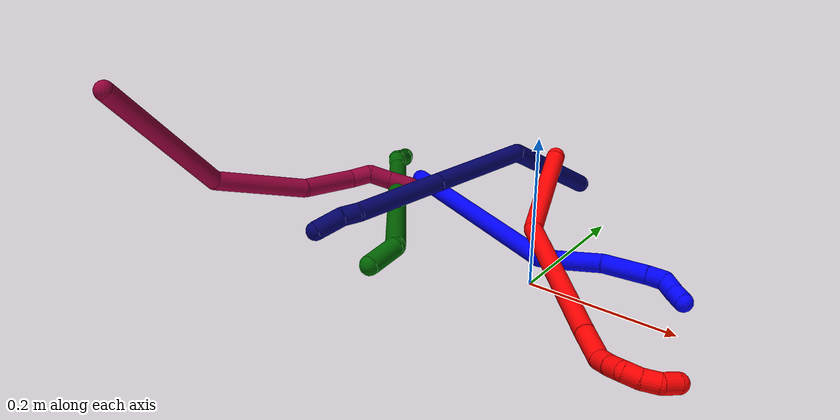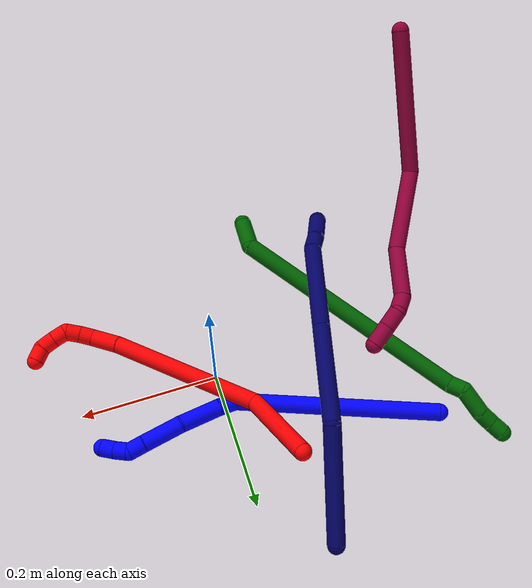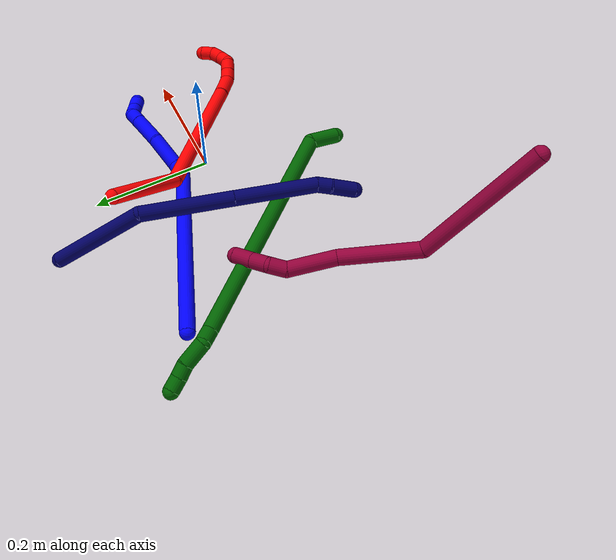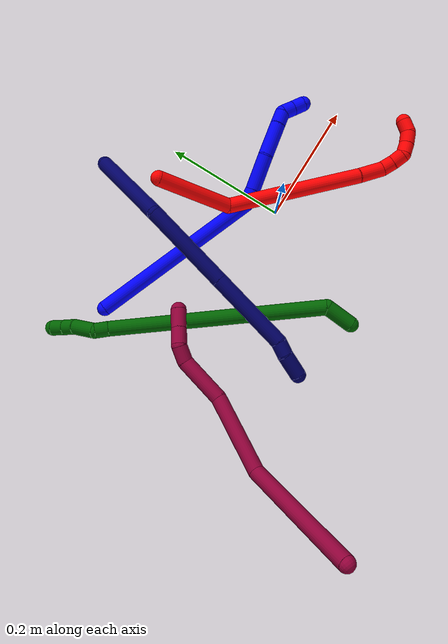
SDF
<sdf version="1.7">
 <world name="default">
  <model name="1">
   <static>0</static>
   <link name="1">
    <collision name="collision-cylinder-e_1_1_4">
     <pose>0.132333 -0.04113 0.045461 0.735427 1.13696 0.482608</pose>
     <geometry><cylinder><radius>0.0125</radius><length>0.291688</length></cylinder></geometry>
     <surface>
      <friction><ode><mu>1.16</mu><mu2>1.16</mu2><slip1>0</slip1><slip2>0</slip2></ode></friction>
      <contact><ode><kp>1e+06</kp><kd>1</kd><max_vel>0</max_vel><min_depth>0.001</min_depth></ode></contact>
     </surface>
    </collision>
    <visual name="visual-cylinder-e_1_1_4">
     <pose>0.132333 -0.04113 0.045461 0.735427 1.13696 0.482608</pose>
     <geometry><cylinder><radius>0.0125</radius><length>0.291688</length></cylinder></geometry>
     <material><ambient>0 0 1 1</ambient></material>
    </visual>
    <collision name="collision-cylinder-e_2_4_5">
     <pose>0.276727 -0.079462 0.095332 -0.565523 1.1621 -0.377055</pose>
     <geometry><cylinder><radius>0.0125</radius><length>0.026285</length></cylinder></geometry>
     <surface>
      <friction><ode><mu>1.16</mu><mu2>1.16</mu2><slip1>0</slip1><slip2>0</slip2></ode></friction>
      <contact><ode><kp>1e+06</kp><kd>1</kd><max_vel>0</max_vel><min_depth>0.001</min_depth></ode></contact>
     </surface>
    </collision>
    <visual name="visual-cylinder-e_2_4_5">
     <pose>0.276727 -0.079462 0.095332 -0.565523 1.1621 -0.377055</pose>
     <geometry><cylinder><radius>0.0125</radius><length>0.026285</length></cylinder></geometry>
     <material><ambient>0 0 1 1</ambient></material>
    </visual>
    <collision name="collision-cylinder-e_3_5_6">
     <pose>0.315846 -0.067683 0.109793 -0.729129 1.10867 -0.464004</pose>
     <geometry><cylinder><radius>0.0125</radius><length>0.06046</length></cylinder></geometry>
     <surface>
      <friction><ode><mu>1.16</mu><mu2>1.16</mu2><slip1>0</slip1><slip2>0</slip2></ode></friction>
      <contact><ode><kp>1e+06</kp><kd>1</kd><max_vel>0</max_vel><min_depth>0.001</min_depth></ode></contact>
     </surface>
    </collision>
    <visual name="visual-cylinder-e_3_5_6">
     <pose>0.315846 -0.067683 0.109793 -0.729129 1.10867 -0.464004</pose>
     <geometry><cylinder><radius>0.0125</radius><length>0.06046</length></cylinder></geometry>
     <material><ambient>0 0 1 1</ambient></material>
    </visual>
    <collision name="collision-cylinder-e_4_6_7">
     <pose>0.370415 -0.05164 0.12415 -1.02344 1.27869 -0.791135</pose>
     <geometry><cylinder><radius>0.0125</radius><length>0.057454</length></cylinder></geometry>
     <surface>
      <friction><ode><mu>1.16</mu><mu2>1.16</mu2><slip1>0</slip1><slip2>0</slip2></ode></friction>
      <contact><ode><kp>1e+06</kp><kd>1</kd><max_vel>0</max_vel><min_depth>0.001</min_depth></ode></contact>
     </surface>
    </collision>
    <visual name="visual-cylinder-e_4_6_7">
     <pose>0.370415 -0.05164 0.12415 -1.02344 1.27869 -0.791135</pose>
     <geometry><cylinder><radius>0.0125</radius><length>0.057454</length></cylinder></geometry>
     <material><ambient>0 0 1 1</ambient></material>
    </visual>
    <collision name="collision-cylinder-e_5_7_8">
     <pose>0.40903 -0.041984 0.129482 -1.19343 1.32481 -0.974489</pose>
     <geometry><cylinder><radius>0.0125</radius><length>0.0229</length></cylinder></geometry>
     <surface>
      <friction><ode><mu>1.16</mu><mu2>1.16</mu2><slip1>0</slip1><slip2>0</slip2></ode></friction>
      <contact><ode><kp>1e+06</kp><kd>1</kd><max_vel>0</max_vel><min_depth>0.001</min_depth></ode></contact>
     </surface>
    </collision>
    <visual name="visual-cylinder-e_5_7_8">
     <pose>0.40903 -0.041984 0.129482 -1.19343 1.32481 -0.974489</pose>
     <geometry><cylinder><radius>0.0125</radius><length>0.0229</length></cylinder></geometry>
     <material><ambient>0 0 1 1</ambient></material>
    </visual>
    <collision name="collision-cylinder-e_6_8_9">
     <pose>0.429342 -0.044281 0.131129 1.44479 1.07937 0.971445</pose>
     <geometry><cylinder><radius>0.0125</radius><length>0.020885</length></cylinder></geometry>
     <surface>
      <friction><ode><mu>1.16</mu><mu2>1.16</mu2><slip1>0</slip1><slip2>0</slip2></ode></friction>
      <contact><ode><kp>1e+06</kp><kd>1</kd><max_vel>0</max_vel><min_depth>0.001</min_depth></ode></contact>
     </surface>
    </collision>
    <visual name="visual-cylinder-e_6_8_9">
     <pose>0.429342 -0.044281 0.131129 1.44479 1.07937 0.971445</pose>
     <geometry><cylinder><radius>0.0125</radius><length>0.020885</length></cylinder></geometry>
     <material><ambient>0 0 1 1</ambient></material>
    </visual>
    <collision name="collision-cylinder-e_7_9_2">
     <pose>0.447292 -0.053954 0.133741 1.1761 1.03568 0.72601</pose>
     <geometry><cylinder><radius>0.0125</radius><length>0.020329</length></cylinder></geometry>
     <surface>
      <friction><ode><mu>1.16</mu><mu2>1.16</mu2><slip1>0</slip1><slip2>0</slip2></ode></friction>
      <contact><ode><kp>1e+06</kp><kd>1</kd><max_vel>0</max_vel><min_depth>0.001</min_depth></ode></contact>
     </surface>
    </collision>
    <visual name="visual-cylinder-e_7_9_2">
     <pose>0.447292 -0.053954 0.133741 1.1761 1.03568 0.72601</pose>
     <geometry><cylinder><radius>0.0125</radius><length>0.020329</length></cylinder></geometry>
     <material><ambient>0 0 1 1</ambient></material>
    </visual>
    <collision name="collision-sphere-2">
     <pose>0.456035 -0.058739 0.135734 0 -0 0</pose>
     <geometry><sphere><radius>0.0125</radius></sphere></geometry>
     <surface>
      <friction><ode><mu>1.16</mu><mu2>1.16</mu2><slip1>0</slip1><slip2>0</slip2></ode></friction>
      <contact><ode><kp>1e+06</kp><kd>1</kd><max_vel>0</max_vel><min_depth>0.001</min_depth></ode></contact>
     </surface>
    </collision>
    <visual name="visual-sphere-2">
     <pose>0.456035 -0.058739 0.135734 0 -0 0</pose>
     <geometry><sphere><radius>0.0125</radius></sphere></geometry>
     <material><ambient>0 0 1 1</ambient></material>
    </visual>
    <collision name="collision-sphere-9">
     <pose>0.438548 -0.049169 0.131748 0 -0 0</pose>
     <geometry><sphere><radius>0.0125</radius></sphere></geometry>
     <surface>
      <friction><ode><mu>1.16</mu><mu2>1.16</mu2><slip1>0</slip1><slip2>0</slip2></ode></friction>
      <contact><ode><kp>1e+06</kp><kd>1</kd><max_vel>0</max_vel><min_depth>0.001</min_depth></ode></contact>
     </surface>
    </collision>
    <visual name="visual-sphere-9">
     <pose>0.438548 -0.049169 0.131748 0 -0 0</pose>
     <geometry><sphere><radius>0.0125</radius></sphere></geometry>
     <material><ambient>0 0 1 1</ambient></material>
    </visual>
    <collision name="collision-sphere-4">
     <pose>0.264667 -0.08226 0.090922 0 -0 0</pose>
     <geometry><sphere><radius>0.0125</radius></sphere></geometry>
     <surface>
      <friction><ode><mu>1.16</mu><mu2>1.16</mu2><slip1>0</slip1><slip2>0</slip2></ode></friction>
      <contact><ode><kp>1e+06</kp><kd>1</kd><max_vel>0</max_vel><min_depth>0.001</min_depth></ode></contact>
     </surface>
    </collision>
    <visual name="visual-sphere-4">
     <pose>0.264667 -0.08226 0.090922 0 -0 0</pose>
     <geometry><sphere><radius>0.0125</radius></sphere></geometry>
     <material><ambient>0 0 1 1</ambient></material>
    </visual>
    <collision name="collision-sphere-1">
     <geometry><sphere><radius>0.0125</radius></sphere></geometry>
     <surface>
      <friction><ode><mu>1.16</mu><mu2>1.16</mu2><slip1>0</slip1><slip2>0</slip2></ode></friction>
      <contact><ode><kp>1e+06</kp><kd>1</kd><max_vel>0</max_vel><min_depth>0.001</min_depth></ode></contact>
     </surface>
    </collision>
    <visual name="visual-sphere-1">
     <geometry><sphere><radius>0.0125</radius></sphere></geometry>
     <material><ambient>0 0 1 1</ambient></material>
    </visual>
    <collision name="collision-sphere-8">
     <pose>0.420135 -0.039392 0.13051 0 -0 0</pose>
     <geometry><sphere><radius>0.0125</radius></sphere></geometry>
     <surface>
      <friction><ode><mu>1.16</mu><mu2>1.16</mu2><slip1>0</slip1><slip2>0</slip2></ode></friction>
      <contact><ode><kp>1e+06</kp><kd>1</kd><max_vel>0</max_vel><min_depth>0.001</min_depth></ode></contact>
     </surface>
    </collision>
    <visual name="visual-sphere-8">
     <pose>0.420135 -0.039392 0.13051 0 -0 0</pose>
     <geometry><sphere><radius>0.0125</radius></sphere></geometry>
     <material><ambient>0 0 1 1</ambient></material>
    </visual>
    <collision name="collision-sphere-5">
     <pose>0.288787 -0.076663 0.099741 0 -0 0</pose>
     <geometry><sphere><radius>0.0125</radius></sphere></geometry>
     <surface>
      <friction><ode><mu>1.16</mu><mu2>1.16</mu2><slip1>0</slip1><slip2>0</slip2></ode></friction>
      <contact><ode><kp>1e+06</kp><kd>1</kd><max_vel>0</max_vel><min_depth>0.001</min_depth></ode></contact>
     </surface>
    </collision>
    <visual name="visual-sphere-5">
     <pose>0.288787 -0.076663 0.099741 0 -0 0</pose>
     <geometry><sphere><radius>0.0125</radius></sphere></geometry>
     <material><ambient>0 0 1 1</ambient></material>
    </visual>
    <collision name="collision-sphere-6">
     <pose>0.342905 -0.058704 0.119844 0 -0 0</pose>
     <geometry><sphere><radius>0.0125</radius></sphere></geometry>
     <surface>
      <friction><ode><mu>1.16</mu><mu2>1.16</mu2><slip1>0</slip1><slip2>0</slip2></ode></friction>
      <contact><ode><kp>1e+06</kp><kd>1</kd><max_vel>0</max_vel><min_depth>0.001</min_depth></ode></contact>
     </surface>
    </collision>
    <visual name="visual-sphere-6">
     <pose>0.342905 -0.058704 0.119844 0 -0 0</pose>
     <geometry><sphere><radius>0.0125</radius></sphere></geometry>
     <material><ambient>0 0 1 1</ambient></material>
    </visual>
    <collision name="collision-sphere-7">
     <pose>0.397925 -0.044576 0.128455 0 -0 0</pose>
     <geometry><sphere><radius>0.0125</radius></sphere></geometry>
     <surface>
      <friction><ode><mu>1.16</mu><mu2>1.16</mu2><slip1>0</slip1><slip2>0</slip2></ode></friction>
      <contact><ode><kp>1e+06</kp><kd>1</kd><max_vel>0</max_vel><min_depth>0.001</min_depth></ode></contact>
     </surface>
    </collision>
    <visual name="visual-sphere-7">
     <pose>0.397925 -0.044576 0.128455 0 -0 0</pose>
     <geometry><sphere><radius>0.0125</radius></sphere></geometry>
     <material><ambient>0 0 1 1</ambient></material>
    </visual>
    <inertial>
     <pose>0.227356 -0.048256 0.075919 0 -0 0</pose>
     <mass>0.5</mass>
     <inertia>
      <ixx>0.001222</ixx>
      <ixy>0</ixy>
      <ixz>0</ixz>
      <iyy>0.00239</iyy>
      <iyz>0</iyz>
      <izz>-0.001343</izz>
     </inertia>
    </inertial>
   </link>
   <pose>-0.287516 0.154759 0.012457 0.255414 0.252138 -0.012266</pose>
  </model>
  <model name="2">
   <static>0</static>
   <link name="2">
    <collision name="collision-cylinder-e_1_1_4">
     <pose>-0.00595 0.000196 -0.063327 -3.13849 -0.093684 3.07544</pose>
     <geometry><cylinder><radius>0.0125</radius><length>0.127213</length></cylinder></geometry>
     <surface>
      <friction><ode><mu>1.16</mu><mu2>1.16</mu2><slip1>0</slip1><slip2>0</slip2></ode></friction>
      <contact><ode><kp>1e+06</kp><kd>1</kd><max_vel>0</max_vel><min_depth>0.001</min_depth></ode></contact>
     </surface>
    </collision>
    <visual name="visual-cylinder-e_1_1_4">
     <pose>-0.00595 0.000196 -0.063327 -3.13849 -0.093684 3.07544</pose>
     <geometry><cylinder><radius>0.0125</radius><length>0.127213</length></cylinder></geometry>
     <material><ambient>1 0 0 1</ambient></material>
    </visual>
    <collision name="collision-cylinder-e_2_4_5">
     <pose>0.025807 -0.048169 -0.221042 2.66642 0.341334 1.23706</pose>
     <geometry><cylinder><radius>0.0125</radius><length>0.225292</length></cylinder></geometry>
     <surface>
      <friction><ode><mu>1.16</mu><mu2>1.16</mu2><slip1>0</slip1><slip2>0</slip2></ode></friction>
      <contact><ode><kp>1e+06</kp><kd>1</kd><max_vel>0</max_vel><min_depth>0.001</min_depth></ode></contact>
     </surface>
    </collision>
    <visual name="visual-cylinder-e_2_4_5">
     <pose>0.025807 -0.048169 -0.221042 2.66642 0.341334 1.23706</pose>
     <geometry><cylinder><radius>0.0125</radius><length>0.225292</length></cylinder></geometry>
     <material><ambient>1 0 0 1</ambient></material>
    </visual>
    <collision name="collision-cylinder-e_3_5_6">
     <pose>0.072527 -0.103909 -0.333699 2.76717 0.430408 1.71348</pose>
     <geometry><cylinder><radius>0.0125</radius><length>0.043199</length></cylinder></geometry>
     <surface>
      <friction><ode><mu>1.16</mu><mu2>1.16</mu2><slip1>0</slip1><slip2>0</slip2></ode></friction>
      <contact><ode><kp>1e+06</kp><kd>1</kd><max_vel>0</max_vel><min_depth>0.001</min_depth></ode></contact>
     </surface>
    </collision>
    <visual name="visual-cylinder-e_3_5_6">
     <pose>0.072527 -0.103909 -0.333699 2.76717 0.430408 1.71348</pose>
     <geometry><cylinder><radius>0.0125</radius><length>0.043199</length></cylinder></geometry>
     <material><ambient>1 0 0 1</ambient></material>
    </visual>
    <collision name="collision-cylinder-e_4_6_7">
     <pose>0.086894 -0.117677 -0.357784 2.29394 0.547225 1.11296</pose>
     <geometry><cylinder><radius>0.0125</radius><length>0.020582</length></cylinder></geometry>
     <surface>
      <friction><ode><mu>1.16</mu><mu2>1.16</mu2><slip1>0</slip1><slip2>0</slip2></ode></friction>
      <contact><ode><kp>1e+06</kp><kd>1</kd><max_vel>0</max_vel><min_depth>0.001</min_depth></ode></contact>
     </surface>
    </collision>
    <visual name="visual-cylinder-e_4_6_7">
     <pose>0.086894 -0.117677 -0.357784 2.29394 0.547225 1.11296</pose>
     <geometry><cylinder><radius>0.0125</radius><length>0.020582</length></cylinder></geometry>
     <material><ambient>1 0 0 1</ambient></material>
    </visual>
    <collision name="collision-cylinder-e_5_7_8">
     <pose>0.098331 -0.130899 -0.368565 2.2134 0.633188 1.15905</pose>
     <geometry><cylinder><radius>0.0125</radius><length>0.020558</length></cylinder></geometry>
     <surface>
      <friction><ode><mu>1.16</mu><mu2>1.16</mu2><slip1>0</slip1><slip2>0</slip2></ode></friction>
      <contact><ode><kp>1e+06</kp><kd>1</kd><max_vel>0</max_vel><min_depth>0.001</min_depth></ode></contact>
     </surface>
    </collision>
    <visual name="visual-cylinder-e_5_7_8">
     <pose>0.098331 -0.130899 -0.368565 2.2134 0.633188 1.15905</pose>
     <geometry><cylinder><radius>0.0125</radius><length>0.020558</length></cylinder></geometry>
     <material><ambient>1 0 0 1</ambient></material>
    </visual>
    <collision name="collision-cylinder-e_6_8_9">
     <pose>0.114282 -0.138137 -0.376029 2.90436 1.31599 2.83562</pose>
     <geometry><cylinder><radius>0.0125</radius><length>0.020396</length></cylinder></geometry>
     <surface>
      <friction><ode><mu>1.16</mu><mu2>1.16</mu2><slip1>0</slip1><slip2>0</slip2></ode></friction>
      <contact><ode><kp>1e+06</kp><kd>1</kd><max_vel>0</max_vel><min_depth>0.001</min_depth></ode></contact>
     </surface>
    </collision>
    <visual name="visual-cylinder-e_6_8_9">
     <pose>0.114282 -0.138137 -0.376029 2.90436 1.31599 2.83562</pose>
     <geometry><cylinder><radius>0.0125</radius><length>0.020396</length></cylinder></geometry>
     <material><ambient>1 0 0 1</ambient></material>
    </visual>
    <collision name="collision-cylinder-e_7_9_10">
     <pose>0.134819 -0.13979 -0.37915 2.10654 1.45699 2.00573</pose>
     <geometry><cylinder><radius>0.0125</radius><length>0.021475</length></cylinder></geometry>
     <surface>
      <friction><ode><mu>1.16</mu><mu2>1.16</mu2><slip1>0</slip1><slip2>0</slip2></ode></friction>
      <contact><ode><kp>1e+06</kp><kd>1</kd><max_vel>0</max_vel><min_depth>0.001</min_depth></ode></contact>
     </surface>
    </collision>
    <visual name="visual-cylinder-e_7_9_10">
     <pose>0.134819 -0.13979 -0.37915 2.10654 1.45699 2.00573</pose>
     <geometry><cylinder><radius>0.0125</radius><length>0.021475</length></cylinder></geometry>
     <material><ambient>1 0 0 1</ambient></material>
    </visual>
    <collision name="collision-cylinder-e_8_10_2">
     <pose>0.155258 -0.138746 -0.37611 -0.518925 1.16331 -0.345598</pose>
     <geometry><cylinder><radius>0.0125</radius><length>0.021286</length></cylinder></geometry>
     <surface>
      <friction><ode><mu>1.16</mu><mu2>1.16</mu2><slip1>0</slip1><slip2>0</slip2></ode></friction>
      <contact><ode><kp>1e+06</kp><kd>1</kd><max_vel>0</max_vel><min_depth>0.001</min_depth></ode></contact>
     </surface>
    </collision>
    <visual name="visual-cylinder-e_8_10_2">
     <pose>0.155258 -0.138746 -0.37611 -0.518925 1.16331 -0.345598</pose>
     <geometry><cylinder><radius>0.0125</radius><length>0.021286</length></cylinder></geometry>
     <material><ambient>1 0 0 1</ambient></material>
    </visual>
    <collision name="collision-sphere-2">
     <pose>0.16503 -0.136655 -0.372448 0 -0 0</pose>
     <geometry><sphere><radius>0.0125</radius></sphere></geometry>
     <surface>
      <friction><ode><mu>1.16</mu><mu2>1.16</mu2><slip1>0</slip1><slip2>0</slip2></ode></friction>
      <contact><ode><kp>1e+06</kp><kd>1</kd><max_vel>0</max_vel><min_depth>0.001</min_depth></ode></contact>
     </surface>
    </collision>
    <visual name="visual-sphere-2">
     <pose>0.16503 -0.136655 -0.372448 0 -0 0</pose>
     <geometry><sphere><radius>0.0125</radius></sphere></geometry>
     <material><ambient>1 0 0 1</ambient></material>
    </visual>
    <collision name="collision-sphere-10">
     <pose>0.145487 -0.140838 -0.379773 0 -0 0</pose>
     <geometry><sphere><radius>0.0125</radius></sphere></geometry>
     <surface>
      <friction><ode><mu>1.16</mu><mu2>1.16</mu2><slip1>0</slip1><slip2>0</slip2></ode></friction>
      <contact><ode><kp>1e+06</kp><kd>1</kd><max_vel>0</max_vel><min_depth>0.001</min_depth></ode></contact>
     </surface>
    </collision>
    <visual name="visual-sphere-10">
     <pose>0.145487 -0.140838 -0.379773 0 -0 0</pose>
     <geometry><sphere><radius>0.0125</radius></sphere></geometry>
     <material><ambient>1 0 0 1</ambient></material>
    </visual>
    <collision name="collision-sphere-9">
     <pose>0.12415 -0.138741 -0.378528 0 -0 0</pose>
     <geometry><sphere><radius>0.0125</radius></sphere></geometry>
     <surface>
      <friction><ode><mu>1.16</mu><mu2>1.16</mu2><slip1>0</slip1><slip2>0</slip2></ode></friction>
      <contact><ode><kp>1e+06</kp><kd>1</kd><max_vel>0</max_vel><min_depth>0.001</min_depth></ode></contact>
     </surface>
    </collision>
    <visual name="visual-sphere-9">
     <pose>0.12415 -0.138741 -0.378528 0 -0 0</pose>
     <geometry><sphere><radius>0.0125</radius></sphere></geometry>
     <material><ambient>1 0 0 1</ambient></material>
    </visual>
    <collision name="collision-sphere-4">
     <pose>-0.0119 0.000393 -0.126654 0 -0 0</pose>
     <geometry><sphere><radius>0.0125</radius></sphere></geometry>
     <surface>
      <friction><ode><mu>1.16</mu><mu2>1.16</mu2><slip1>0</slip1><slip2>0</slip2></ode></friction>
      <contact><ode><kp>1e+06</kp><kd>1</kd><max_vel>0</max_vel><min_depth>0.001</min_depth></ode></contact>
     </surface>
    </collision>
    <visual name="visual-sphere-4">
     <pose>-0.0119 0.000393 -0.126654 0 -0 0</pose>
     <geometry><sphere><radius>0.0125</radius></sphere></geometry>
     <material><ambient>1 0 0 1</ambient></material>
    </visual>
    <collision name="collision-sphere-1">
     <geometry><sphere><radius>0.0125</radius></sphere></geometry>
     <surface>
      <friction><ode><mu>1.16</mu><mu2>1.16</mu2><slip1>0</slip1><slip2>0</slip2></ode></friction>
      <contact><ode><kp>1e+06</kp><kd>1</kd><max_vel>0</max_vel><min_depth>0.001</min_depth></ode></contact>
     </surface>
    </collision>
    <visual name="visual-sphere-1">
     <geometry><sphere><radius>0.0125</radius></sphere></geometry>
     <material><ambient>1 0 0 1</ambient></material>
    </visual>
    <collision name="collision-sphere-8">
     <pose>0.104413 -0.137533 -0.373531 0 -0 0</pose>
     <geometry><sphere><radius>0.0125</radius></sphere></geometry>
     <surface>
      <friction><ode><mu>1.16</mu><mu2>1.16</mu2><slip1>0</slip1><slip2>0</slip2></ode></friction>
      <contact><ode><kp>1e+06</kp><kd>1</kd><max_vel>0</max_vel><min_depth>0.001</min_depth></ode></contact>
     </surface>
    </collision>
    <visual name="visual-sphere-8">
     <pose>0.104413 -0.137533 -0.373531 0 -0 0</pose>
     <geometry><sphere><radius>0.0125</radius></sphere></geometry>
     <material><ambient>1 0 0 1</ambient></material>
    </visual>
    <collision name="collision-sphere-5">
     <pose>0.063515 -0.09673 -0.315429 0 -0 0</pose>
     <geometry><sphere><radius>0.0125</radius></sphere></geometry>
     <surface>
      <friction><ode><mu>1.16</mu><mu2>1.16</mu2><slip1>0</slip1><slip2>0</slip2></ode></friction>
      <contact><ode><kp>1e+06</kp><kd>1</kd><max_vel>0</max_vel><min_depth>0.001</min_depth></ode></contact>
     </surface>
    </collision>
    <visual name="visual-sphere-5">
     <pose>0.063515 -0.09673 -0.315429 0 -0 0</pose>
     <geometry><sphere><radius>0.0125</radius></sphere></geometry>
     <material><ambient>1 0 0 1</ambient></material>
    </visual>
    <collision name="collision-sphere-6">
     <pose>0.081539 -0.111089 -0.351968 0 -0 0</pose>
     <geometry><sphere><radius>0.0125</radius></sphere></geometry>
     <surface>
      <friction><ode><mu>1.16</mu><mu2>1.16</mu2><slip1>0</slip1><slip2>0</slip2></ode></friction>
      <contact><ode><kp>1e+06</kp><kd>1</kd><max_vel>0</max_vel><min_depth>0.001</min_depth></ode></contact>
     </surface>
    </collision>
    <visual name="visual-sphere-6">
     <pose>0.081539 -0.111089 -0.351968 0 -0 0</pose>
     <geometry><sphere><radius>0.0125</radius></sphere></geometry>
     <material><ambient>1 0 0 1</ambient></material>
    </visual>
    <collision name="collision-sphere-7">
     <pose>0.092248 -0.124266 -0.363599 0 -0 0</pose>
     <geometry><sphere><radius>0.0125</radius></sphere></geometry>
     <surface>
      <friction><ode><mu>1.16</mu><mu2>1.16</mu2><slip1>0</slip1><slip2>0</slip2></ode></friction>
      <contact><ode><kp>1e+06</kp><kd>1</kd><max_vel>0</max_vel><min_depth>0.001</min_depth></ode></contact>
     </surface>
    </collision>
    <visual name="visual-sphere-7">
     <pose>0.092248 -0.124266 -0.363599 0 -0 0</pose>
     <geometry><sphere><radius>0.0125</radius></sphere></geometry>
     <material><ambient>1 0 0 1</ambient></material>
    </visual>
    <inertial>
     <pose>0.041062 -0.058403 -0.222057 0 -0 0</pose>
     <mass>0.5</mass>
     <inertia><ixx>0.001012</ixx><ixy>0</ixy><ixz>0</ixz><iyy>0.00091</iyy><iyz>0</iyz><izz>7.4e-05</izz></inertia>
    </inertial>
   </link>
   <pose>-0.069962 0.176857 0.098161 -1.06136 0.148963 0.472061</pose>
  </model>
  <model name="6">
   <static>0</static>
   <link name="6">
    <collision name="collision-cylinder-e_1_1_4">
     <pose>0.004273 0.003531 -0.02227 -2.98435 0.187301 -1.74568</pose>
     <geometry><cylinder><radius>0.0125</radius><length>0.045898</length></cylinder></geometry>
     <surface>
      <friction><ode><mu>1.16</mu><mu2>1.16</mu2><slip1>0</slip1><slip2>0</slip2></ode></friction>
      <contact><ode><kp>1e+06</kp><kd>1</kd><max_vel>0</max_vel><min_depth>0.001</min_depth></ode></contact>
     </surface>
    </collision>
    <visual name="visual-cylinder-e_1_1_4">
     <pose>0.004273 0.003531 -0.02227 -2.98435 0.187301 -1.74568</pose>
     <geometry><cylinder><radius>0.0125</radius><length>0.045898</length></cylinder></geometry>
     <material><ambient>0 0.392157 0.003922 1</ambient></material>
    </visual>
    <collision name="collision-cylinder-e_2_4_5">
     <pose>-0.007339 0.090269 -0.118443 -2.29705 -0.141783 0.3135</pose>
     <geometry><cylinder><radius>0.0125</radius><length>0.224833</length></cylinder></geometry>
     <surface>
      <friction><ode><mu>1.16</mu><mu2>1.16</mu2><slip1>0</slip1><slip2>0</slip2></ode></friction>
      <contact><ode><kp>1e+06</kp><kd>1</kd><max_vel>0</max_vel><min_depth>0.001</min_depth></ode></contact>
     </surface>
    </collision>
    <visual name="visual-cylinder-e_2_4_5">
     <pose>-0.007339 0.090269 -0.118443 -2.29705 -0.141783 0.3135</pose>
     <geometry><cylinder><radius>0.0125</radius><length>0.224833</length></cylinder></geometry>
     <material><ambient>0 0.392157 0.003922 1</ambient></material>
    </visual>
    <collision name="collision-cylinder-e_3_5_6">
     <pose>-0.032137 0.220217 -0.233823 -2.29658 -0.141678 0.31308</pose>
     <geometry><cylinder><radius>0.0125</radius><length>0.126246</length></cylinder></geometry>
     <surface>
      <friction><ode><mu>1.16</mu><mu2>1.16</mu2><slip1>0</slip1><slip2>0</slip2></ode></friction>
      <contact><ode><kp>1e+06</kp><kd>1</kd><max_vel>0</max_vel><min_depth>0.001</min_depth></ode></contact>
     </surface>
    </collision>
    <visual name="visual-cylinder-e_3_5_6">
     <pose>-0.032137 0.220217 -0.233823 -2.29658 -0.141678 0.31308</pose>
     <geometry><cylinder><radius>0.0125</radius><length>0.126246</length></cylinder></geometry>
     <material><ambient>0 0.392157 0.003922 1</ambient></material>
    </visual>
    <collision name="collision-cylinder-e_4_6_7">
     <pose>-0.03903 0.276185 -0.282092 -2.2054 0.174559 -0.342756</pose>
     <geometry><cylinder><radius>0.0125</radius><length>0.023268</length></cylinder></geometry>
     <surface>
      <friction><ode><mu>1.16</mu><mu2>1.16</mu2><slip1>0</slip1><slip2>0</slip2></ode></friction>
      <contact><ode><kp>1e+06</kp><kd>1</kd><max_vel>0</max_vel><min_depth>0.001</min_depth></ode></contact>
     </surface>
    </collision>
    <visual name="visual-cylinder-e_4_6_7">
     <pose>-0.03903 0.276185 -0.282092 -2.2054 0.174559 -0.342756</pose>
     <geometry><cylinder><radius>0.0125</radius><length>0.023268</length></cylinder></geometry>
     <material><ambient>0 0.392157 0.003922 1</ambient></material>
    </visual>
    <collision name="collision-cylinder-e_5_7_8">
     <pose>-0.043269 0.294657 -0.304402 -2.60423 -0.333567 1.09755</pose>
     <geometry><cylinder><radius>0.0125</radius><length>0.038234</length></cylinder></geometry>
     <surface>
      <friction><ode><mu>1.16</mu><mu2>1.16</mu2><slip1>0</slip1><slip2>0</slip2></ode></friction>
      <contact><ode><kp>1e+06</kp><kd>1</kd><max_vel>0</max_vel><min_depth>0.001</min_depth></ode></contact>
     </surface>
    </collision>
    <visual name="visual-cylinder-e_5_7_8">
     <pose>-0.043269 0.294657 -0.304402 -2.60423 -0.333567 1.09755</pose>
     <geometry><cylinder><radius>0.0125</radius><length>0.038234</length></cylinder></geometry>
     <material><ambient>0 0.392157 0.003922 1</ambient></material>
    </visual>
    <collision name="collision-cylinder-e_6_8_9">
     <pose>-0.053661 0.310431 -0.326609 -2.36847 -0.416313 0.957316</pose>
     <geometry><cylinder><radius>0.0125</radius><length>0.02044</length></cylinder></geometry>
     <surface>
      <friction><ode><mu>1.16</mu><mu2>1.16</mu2><slip1>0</slip1><slip2>0</slip2></ode></friction>
      <contact><ode><kp>1e+06</kp><kd>1</kd><max_vel>0</max_vel><min_depth>0.001</min_depth></ode></contact>
     </surface>
    </collision>
    <visual name="visual-cylinder-e_6_8_9">
     <pose>-0.053661 0.310431 -0.326609 -2.36847 -0.416313 0.957316</pose>
     <geometry><cylinder><radius>0.0125</radius><length>0.02044</length></cylinder></geometry>
     <material><ambient>0 0.392157 0.003922 1</ambient></material>
    </visual>
    <collision name="collision-cylinder-e_7_9_2">
     <pose>-0.06054 0.324053 -0.340596 -2.37029 -0.263587 0.631217</pose>
     <geometry><cylinder><radius>0.0125</radius><length>0.021081</length></cylinder></geometry>
     <surface>
      <friction><ode><mu>1.16</mu><mu2>1.16</mu2><slip1>0</slip1><slip2>0</slip2></ode></friction>
      <contact><ode><kp>1e+06</kp><kd>1</kd><max_vel>0</max_vel><min_depth>0.001</min_depth></ode></contact>
     </surface>
    </collision>
    <visual name="visual-cylinder-e_7_9_2">
     <pose>-0.06054 0.324053 -0.340596 -2.37029 -0.263587 0.631217</pose>
     <geometry><cylinder><radius>0.0125</radius><length>0.021081</length></cylinder></geometry>
     <material><ambient>0 0.392157 0.003922 1</ambient></material>
    </visual>
    <collision name="collision-sphere-2">
     <pose>-0.063286 0.331146 -0.347892 0 -0 0</pose>
     <geometry><sphere><radius>0.0125</radius></sphere></geometry>
     <surface>
      <friction><ode><mu>1.16</mu><mu2>1.16</mu2><slip1>0</slip1><slip2>0</slip2></ode></friction>
      <contact><ode><kp>1e+06</kp><kd>1</kd><max_vel>0</max_vel><min_depth>0.001</min_depth></ode></contact>
     </surface>
    </collision>
    <visual name="visual-sphere-2">
     <pose>-0.063286 0.331146 -0.347892 0 -0 0</pose>
     <geometry><sphere><radius>0.0125</radius></sphere></geometry>
     <material><ambient>0 0.392157 0.003922 1</ambient></material>
    </visual>
    <collision name="collision-sphere-9">
     <pose>-0.057794 0.316959 -0.333299 0 -0 0</pose>
     <geometry><sphere><radius>0.0125</radius></sphere></geometry>
     <surface>
      <friction><ode><mu>1.16</mu><mu2>1.16</mu2><slip1>0</slip1><slip2>0</slip2></ode></friction>
      <contact><ode><kp>1e+06</kp><kd>1</kd><max_vel>0</max_vel><min_depth>0.001</min_depth></ode></contact>
     </surface>
    </collision>
    <visual name="visual-sphere-9">
     <pose>-0.057794 0.316959 -0.333299 0 -0 0</pose>
     <geometry><sphere><radius>0.0125</radius></sphere></geometry>
     <material><ambient>0 0.392157 0.003922 1</ambient></material>
    </visual>
    <collision name="collision-sphere-4">
     <pose>0.008547 0.007062 -0.044539 0 -0 0</pose>
     <geometry><sphere><radius>0.0125</radius></sphere></geometry>
     <surface>
      <friction><ode><mu>1.16</mu><mu2>1.16</mu2><slip1>0</slip1><slip2>0</slip2></ode></friction>
      <contact><ode><kp>1e+06</kp><kd>1</kd><max_vel>0</max_vel><min_depth>0.001</min_depth></ode></contact>
     </surface>
    </collision>
    <visual name="visual-sphere-4">
     <pose>0.008547 0.007062 -0.044539 0 -0 0</pose>
     <geometry><sphere><radius>0.0125</radius></sphere></geometry>
     <material><ambient>0 0.392157 0.003922 1</ambient></material>
    </visual>
    <collision name="collision-sphere-1">
     <geometry><sphere><radius>0.0125</radius></sphere></geometry>
     <surface>
      <friction><ode><mu>1.16</mu><mu2>1.16</mu2><slip1>0</slip1><slip2>0</slip2></ode></friction>
      <contact><ode><kp>1e+06</kp><kd>1</kd><max_vel>0</max_vel><min_depth>0.001</min_depth></ode></contact>
     </surface>
    </collision>
    <visual name="visual-sphere-1">
     <geometry><sphere><radius>0.0125</radius></sphere></geometry>
     <material><ambient>0 0.392157 0.003922 1</ambient></material>
    </visual>
    <collision name="collision-sphere-8">
     <pose>-0.049528 0.303903 -0.319919 0 -0 0</pose>
     <geometry><sphere><radius>0.0125</radius></sphere></geometry>
     <surface>
      <friction><ode><mu>1.16</mu><mu2>1.16</mu2><slip1>0</slip1><slip2>0</slip2></ode></friction>
      <contact><ode><kp>1e+06</kp><kd>1</kd><max_vel>0</max_vel><min_depth>0.001</min_depth></ode></contact>
     </surface>
    </collision>
    <visual name="visual-sphere-8">
     <pose>-0.049528 0.303903 -0.319919 0 -0 0</pose>
     <geometry><sphere><radius>0.0125</radius></sphere></geometry>
     <material><ambient>0 0.392157 0.003922 1</ambient></material>
    </visual>
    <collision name="collision-sphere-5">
     <pose>-0.023224 0.173475 -0.192347 0 -0 0</pose>
     <geometry><sphere><radius>0.0125</radius></sphere></geometry>
     <surface>
      <friction><ode><mu>1.16</mu><mu2>1.16</mu2><slip1>0</slip1><slip2>0</slip2></ode></friction>
      <contact><ode><kp>1e+06</kp><kd>1</kd><max_vel>0</max_vel><min_depth>0.001</min_depth></ode></contact>
     </surface>
    </collision>
    <visual name="visual-sphere-5">
     <pose>-0.023224 0.173475 -0.192347 0 -0 0</pose>
     <geometry><sphere><radius>0.0125</radius></sphere></geometry>
     <material><ambient>0 0.392157 0.003922 1</ambient></material>
    </visual>
    <collision name="collision-sphere-6">
     <pose>-0.041051 0.266958 -0.275299 0 -0 0</pose>
     <geometry><sphere><radius>0.0125</radius></sphere></geometry>
     <surface>
      <friction><ode><mu>1.16</mu><mu2>1.16</mu2><slip1>0</slip1><slip2>0</slip2></ode></friction>
      <contact><ode><kp>1e+06</kp><kd>1</kd><max_vel>0</max_vel><min_depth>0.001</min_depth></ode></contact>
     </surface>
    </collision>
    <visual name="visual-sphere-6">
     <pose>-0.041051 0.266958 -0.275299 0 -0 0</pose>
     <geometry><sphere><radius>0.0125</radius></sphere></geometry>
     <material><ambient>0 0.392157 0.003922 1</ambient></material>
    </visual>
    <collision name="collision-sphere-7">
     <pose>-0.037009 0.285411 -0.288885 0 -0 0</pose>
     <geometry><sphere><radius>0.0125</radius></sphere></geometry>
     <surface>
      <friction><ode><mu>1.16</mu><mu2>1.16</mu2><slip1>0</slip1><slip2>0</slip2></ode></friction>
      <contact><ode><kp>1e+06</kp><kd>1</kd><max_vel>0</max_vel><min_depth>0.001</min_depth></ode></contact>
     </surface>
    </collision>
    <visual name="visual-sphere-7">
     <pose>-0.037009 0.285411 -0.288885 0 -0 0</pose>
     <geometry><sphere><radius>0.0125</radius></sphere></geometry>
     <material><ambient>0 0.392157 0.003922 1</ambient></material>
    </visual>
    <inertial>
     <pose>-0.020893 0.158255 -0.178459 0 -0 0</pose>
     <mass>0.5</mass>
     <inertia>
      <ixx>0.001404</ixx>
      <ixy>0</ixy>
      <ixz>0</ixz>
      <iyy>-0.00031</iyy>
      <iyz>0</iyz>
      <izz>-0.00071</izz>
     </inertia>
    </inertial>
   </link>
   <pose>-0.104141 -0.195835 0.079971 0.661594 -1.49499 0.700481</pose>
  </model>
  <model name="7">
   <static>0</static>
   <link name="7">
    <collision name="collision-cylinder-e_1_1_4">
     <pose>0.04082 -0.023293 -0.066038 2.80249 0.527768 2.01204</pose>
     <geometry><cylinder><radius>0.0125</radius><length>0.16211</length></cylinder></geometry>
     <surface>
      <friction><ode><mu>1.16</mu><mu2>1.16</mu2><slip1>0</slip1><slip2>0</slip2></ode></friction>
      <contact><ode><kp>1e+06</kp><kd>1</kd><max_vel>0</max_vel><min_depth>0.001</min_depth></ode></contact>
     </surface>
    </collision>
    <visual name="visual-cylinder-e_1_1_4">
     <pose>0.04082 -0.023293 -0.066038 2.80249 0.527768 2.01204</pose>
     <geometry><cylinder><radius>0.0125</radius><length>0.16211</length></cylinder></geometry>
     <material><ambient>0.003922 0 0.403922 1</ambient></material>
    </visual>
    <collision name="collision-cylinder-e_2_4_5">
     <pose>0.076978 -0.0715 -0.200289 2.79141 -0.064098 -0.358568</pose>
     <geometry><cylinder><radius>0.0125</radius><length>0.145538</length></cylinder></geometry>
     <surface>
      <friction><ode><mu>1.16</mu><mu2>1.16</mu2><slip1>0</slip1><slip2>0</slip2></ode></friction>
      <contact><ode><kp>1e+06</kp><kd>1</kd><max_vel>0</max_vel><min_depth>0.001</min_depth></ode></contact>
     </surface>
    </collision>
    <visual name="visual-cylinder-e_2_4_5">
     <pose>0.076978 -0.0715 -0.200289 2.79141 -0.064098 -0.358568</pose>
     <geometry><cylinder><radius>0.0125</radius><length>0.145538</length></cylinder></geometry>
     <material><ambient>0.003922 0 0.403922 1</ambient></material>
    </visual>
    <collision name="collision-cylinder-e_3_5_6">
     <pose>0.068005 -0.118987 -0.330095 2.79031 -0.065638 -0.365846</pose>
     <geometry><cylinder><radius>0.0125</radius><length>0.131483</length></cylinder></geometry>
     <surface>
      <friction><ode><mu>1.16</mu><mu2>1.16</mu2><slip1>0</slip1><slip2>0</slip2></ode></friction>
      <contact><ode><kp>1e+06</kp><kd>1</kd><max_vel>0</max_vel><min_depth>0.001</min_depth></ode></contact>
     </surface>
    </collision>
    <visual name="visual-cylinder-e_3_5_6">
     <pose>0.068005 -0.118987 -0.330095 2.79031 -0.065638 -0.365846</pose>
     <geometry><cylinder><radius>0.0125</radius><length>0.131483</length></cylinder></geometry>
     <material><ambient>0.003922 0 0.403922 1</ambient></material>
    </visual>
    <collision name="collision-cylinder-e_4_6_7">
     <pose>0.062471 -0.148404 -0.400301 2.47017 -0.110608 -0.314703</pose>
     <geometry><cylinder><radius>0.0125</radius><length>0.022136</length></cylinder></geometry>
     <surface>
      <friction><ode><mu>1.16</mu><mu2>1.16</mu2><slip1>0</slip1><slip2>0</slip2></ode></friction>
      <contact><ode><kp>1e+06</kp><kd>1</kd><max_vel>0</max_vel><min_depth>0.001</min_depth></ode></contact>
     </surface>
    </collision>
    <visual name="visual-cylinder-e_4_6_7">
     <pose>0.062471 -0.148404 -0.400301 2.47017 -0.110608 -0.314703</pose>
     <geometry><cylinder><radius>0.0125</radius><length>0.022136</length></cylinder></geometry>
     <material><ambient>0.003922 0 0.403922 1</ambient></material>
    </visual>
    <collision name="collision-cylinder-e_5_7_2">
     <pose>0.055115 -0.164701 -0.424664 2.60099 -0.322296 -1.06113</pose>
     <geometry><cylinder><radius>0.0125</radius><length>0.038734</length></cylinder></geometry>
     <surface>
      <friction><ode><mu>1.16</mu><mu2>1.16</mu2><slip1>0</slip1><slip2>0</slip2></ode></friction>
      <contact><ode><kp>1e+06</kp><kd>1</kd><max_vel>0</max_vel><min_depth>0.001</min_depth></ode></contact>
     </surface>
    </collision>
    <visual name="visual-cylinder-e_5_7_2">
     <pose>0.055115 -0.164701 -0.424664 2.60099 -0.322296 -1.06113</pose>
     <geometry><cylinder><radius>0.0125</radius><length>0.038734</length></cylinder></geometry>
     <material><ambient>0.003922 0 0.403922 1</ambient></material>
    </visual>
    <collision name="collision-sphere-2">
     <pose>0.048981 -0.174155 -0.440414 0 -0 0</pose>
     <geometry><sphere><radius>0.0125</radius></sphere></geometry>
     <surface>
      <friction><ode><mu>1.16</mu><mu2>1.16</mu2><slip1>0</slip1><slip2>0</slip2></ode></friction>
      <contact><ode><kp>1e+06</kp><kd>1</kd><max_vel>0</max_vel><min_depth>0.001</min_depth></ode></contact>
     </surface>
    </collision>
    <visual name="visual-sphere-2">
     <pose>0.048981 -0.174155 -0.440414 0 -0 0</pose>
     <geometry><sphere><radius>0.0125</radius></sphere></geometry>
     <material><ambient>0.003922 0 0.403922 1</ambient></material>
    </visual>
    <collision name="collision-sphere-7">
     <pose>0.06125 -0.155247 -0.408914 0 -0 0</pose>
     <geometry><sphere><radius>0.0125</radius></sphere></geometry>
     <surface>
      <friction><ode><mu>1.16</mu><mu2>1.16</mu2><slip1>0</slip1><slip2>0</slip2></ode></friction>
      <contact><ode><kp>1e+06</kp><kd>1</kd><max_vel>0</max_vel><min_depth>0.001</min_depth></ode></contact>
     </surface>
    </collision>
    <visual name="visual-sphere-7">
     <pose>0.06125 -0.155247 -0.408914 0 -0 0</pose>
     <geometry><sphere><radius>0.0125</radius></sphere></geometry>
     <material><ambient>0.003922 0 0.403922 1</ambient></material>
    </visual>
    <collision name="collision-sphere-6">
     <pose>0.063693 -0.14156 -0.391688 0 -0 0</pose>
     <geometry><sphere><radius>0.0125</radius></sphere></geometry>
     <surface>
      <friction><ode><mu>1.16</mu><mu2>1.16</mu2><slip1>0</slip1><slip2>0</slip2></ode></friction>
      <contact><ode><kp>1e+06</kp><kd>1</kd><max_vel>0</max_vel><min_depth>0.001</min_depth></ode></contact>
     </surface>
    </collision>
    <visual name="visual-sphere-6">
     <pose>0.063693 -0.14156 -0.391688 0 -0 0</pose>
     <geometry><sphere><radius>0.0125</radius></sphere></geometry>
     <material><ambient>0.003922 0 0.403922 1</ambient></material>
    </visual>
    <collision name="collision-sphere-5">
     <pose>0.072317 -0.096414 -0.268501 0 -0 0</pose>
     <geometry><sphere><radius>0.0125</radius></sphere></geometry>
     <surface>
      <friction><ode><mu>1.16</mu><mu2>1.16</mu2><slip1>0</slip1><slip2>0</slip2></ode></friction>
      <contact><ode><kp>1e+06</kp><kd>1</kd><max_vel>0</max_vel><min_depth>0.001</min_depth></ode></contact>
     </surface>
    </collision>
    <visual name="visual-sphere-5">
     <pose>0.072317 -0.096414 -0.268501 0 -0 0</pose>
     <geometry><sphere><radius>0.0125</radius></sphere></geometry>
     <material><ambient>0.003922 0 0.403922 1</ambient></material>
    </visual>
    <collision name="collision-sphere-1">
     <geometry><sphere><radius>0.0125</radius></sphere></geometry>
     <surface>
      <friction><ode><mu>1.16</mu><mu2>1.16</mu2><slip1>0</slip1><slip2>0</slip2></ode></friction>
      <contact><ode><kp>1e+06</kp><kd>1</kd><max_vel>0</max_vel><min_depth>0.001</min_depth></ode></contact>
     </surface>
    </collision>
    <visual name="visual-sphere-1">
     <geometry><sphere><radius>0.0125</radius></sphere></geometry>
     <material><ambient>0.003922 0 0.403922 1</ambient></material>
    </visual>
    <collision name="collision-sphere-4">
     <pose>0.081639 -0.046587 -0.132077 0 -0 0</pose>
     <geometry><sphere><radius>0.0125</radius></sphere></geometry>
     <surface>
      <friction><ode><mu>1.16</mu><mu2>1.16</mu2><slip1>0</slip1><slip2>0</slip2></ode></friction>
      <contact><ode><kp>1e+06</kp><kd>1</kd><max_vel>0</max_vel><min_depth>0.001</min_depth></ode></contact>
     </surface>
    </collision>
    <visual name="visual-sphere-4">
     <pose>0.081639 -0.046587 -0.132077 0 -0 0</pose>
     <geometry><sphere><radius>0.0125</radius></sphere></geometry>
     <material><ambient>0.003922 0 0.403922 1</ambient></material>
    </visual>
    <inertial>
     <pose>0.060559 -0.078983 -0.217133 0 -0 0</pose>
     <mass>0.5</mass>
     <inertia><ixx>0.000417</ixx><ixy>0</ixy><ixz>0</ixz><iyy>-9.9e-05</iyy><iyz>0</iyz><izz>8e-05</izz></inertia>
    </inertial>
   </link>
   <pose>-0.082593 0.285531 0.012655 2.55777 -1.50893 2.2549</pose>
  </model>
  <model name="8">
   <static>0</static>
   <link name="8">
    <collision name="collision-cylinder-e_1_1_4">
     <pose>0.007293 -0.051391 -0.091404 2.6294 0.069439 0.263759</pose>
     <geometry><cylinder><radius>0.0125</radius><length>0.210228</length></cylinder></geometry>
     <surface>
      <friction><ode><mu>1.16</mu><mu2>1.16</mu2><slip1>0</slip1><slip2>0</slip2></ode></friction>
      <contact><ode><kp>1e+06</kp><kd>1</kd><max_vel>0</max_vel><min_depth>0.001</min_depth></ode></contact>
     </surface>
    </collision>
    <visual name="visual-cylinder-e_1_1_4">
     <pose>0.007293 -0.051391 -0.091404 2.6294 0.069439 0.263759</pose>
     <geometry><cylinder><radius>0.0125</radius><length>0.210228</length></cylinder></geometry>
     <material><ambient>0.584314 0 0.227451 1</ambient></material>
    </visual>
    <collision name="collision-cylinder-e_2_4_5">
     <pose>0.020587 -0.092749 -0.24446 -2.98027 0.095778 -1.07031</pose>
     <geometry><cylinder><radius>0.0125</radius><length>0.125501</length></cylinder></geometry>
     <surface>
      <friction><ode><mu>1.16</mu><mu2>1.16</mu2><slip1>0</slip1><slip2>0</slip2></ode></friction>
      <contact><ode><kp>1e+06</kp><kd>1</kd><max_vel>0</max_vel><min_depth>0.001</min_depth></ode></contact>
     </surface>
    </collision>
    <visual name="visual-cylinder-e_2_4_5">
     <pose>0.020587 -0.092749 -0.24446 -2.98027 0.095778 -1.07031</pose>
     <geometry><cylinder><radius>0.0125</radius><length>0.125501</length></cylinder></geometry>
     <material><ambient>0.584314 0 0.227451 1</ambient></material>
    </visual>
    <collision name="collision-cylinder-e_3_5_6">
     <pose>0.018534 -0.075109 -0.342919 -2.9378 -0.211099 1.60626</pose>
     <geometry><cylinder><radius>0.0125</radius><length>0.076877</length></cylinder></geometry>
     <surface>
      <friction><ode><mu>1.16</mu><mu2>1.16</mu2><slip1>0</slip1><slip2>0</slip2></ode></friction>
      <contact><ode><kp>1e+06</kp><kd>1</kd><max_vel>0</max_vel><min_depth>0.001</min_depth></ode></contact>
     </surface>
    </collision>
    <visual name="visual-cylinder-e_3_5_6">
     <pose>0.018534 -0.075109 -0.342919 -2.9378 -0.211099 1.60626</pose>
     <geometry><cylinder><radius>0.0125</radius><length>0.076877</length></cylinder></geometry>
     <material><ambient>0.584314 0 0.227451 1</ambient></material>
    </visual>
    <collision name="collision-cylinder-e_4_6_7">
     <pose>0.011028 -0.059511 -0.391007 -2.52524 0.039623 -0.124332</pose>
     <geometry><cylinder><radius>0.0125</radius><length>0.02767</length></cylinder></geometry>
     <surface>
      <friction><ode><mu>1.16</mu><mu2>1.16</mu2><slip1>0</slip1><slip2>0</slip2></ode></friction>
      <contact><ode><kp>1e+06</kp><kd>1</kd><max_vel>0</max_vel><min_depth>0.001</min_depth></ode></contact>
     </surface>
    </collision>
    <visual name="visual-cylinder-e_4_6_7">
     <pose>0.011028 -0.059511 -0.391007 -2.52524 0.039623 -0.124332</pose>
     <geometry><cylinder><radius>0.0125</radius><length>0.02767</length></cylinder></geometry>
     <material><ambient>0.584314 0 0.227451 1</ambient></material>
    </visual>
    <collision name="collision-cylinder-e_5_7_8">
     <pose>0.01849 -0.048505 -0.414038 -2.89041 0.518014 -2.25223</pose>
     <geometry><cylinder><radius>0.0125</radius><length>0.027928</length></cylinder></geometry>
     <surface>
      <friction><ode><mu>1.16</mu><mu2>1.16</mu2><slip1>0</slip1><slip2>0</slip2></ode></friction>
      <contact><ode><kp>1e+06</kp><kd>1</kd><max_vel>0</max_vel><min_depth>0.001</min_depth></ode></contact>
     </surface>
    </collision>
    <visual name="visual-cylinder-e_5_7_8">
     <pose>0.01849 -0.048505 -0.414038 -2.89041 0.518014 -2.25223</pose>
     <geometry><cylinder><radius>0.0125</radius><length>0.027928</length></cylinder></geometry>
     <material><ambient>0.584314 0 0.227451 1</ambient></material>
    </visual>
    <collision name="collision-cylinder-e_6_8_2">
     <pose>0.033092 -0.041354 -0.439077 -2.83988 0.50467 -2.07615</pose>
     <geometry><cylinder><radius>0.0125</radius><length>0.031797</length></cylinder></geometry>
     <surface>
      <friction><ode><mu>1.16</mu><mu2>1.16</mu2><slip1>0</slip1><slip2>0</slip2></ode></friction>
      <contact><ode><kp>1e+06</kp><kd>1</kd><max_vel>0</max_vel><min_depth>0.001</min_depth></ode></contact>
     </surface>
    </collision>
    <visual name="visual-cylinder-e_6_8_2">
     <pose>0.033092 -0.041354 -0.439077 -2.83988 0.50467 -2.07615</pose>
     <geometry><cylinder><radius>0.0125</radius><length>0.031797</length></cylinder></geometry>
     <material><ambient>0.584314 0 0.227451 1</ambient></material>
    </visual>
    <collision name="collision-sphere-2">
     <pose>0.040779 -0.037218 -0.452365 0 -0 0</pose>
     <geometry><sphere><radius>0.0125</radius></sphere></geometry>
     <surface>
      <friction><ode><mu>1.16</mu><mu2>1.16</mu2><slip1>0</slip1><slip2>0</slip2></ode></friction>
      <contact><ode><kp>1e+06</kp><kd>1</kd><max_vel>0</max_vel><min_depth>0.001</min_depth></ode></contact>
     </surface>
    </collision>
    <visual name="visual-sphere-2">
     <pose>0.040779 -0.037218 -0.452365 0 -0 0</pose>
     <geometry><sphere><radius>0.0125</radius></sphere></geometry>
     <material><ambient>0.584314 0 0.227451 1</ambient></material>
    </visual>
    <collision name="collision-sphere-4">
     <pose>0.014586 -0.102782 -0.182808 0 -0 0</pose>
     <geometry><sphere><radius>0.0125</radius></sphere></geometry>
     <surface>
      <friction><ode><mu>1.16</mu><mu2>1.16</mu2><slip1>0</slip1><slip2>0</slip2></ode></friction>
      <contact><ode><kp>1e+06</kp><kd>1</kd><max_vel>0</max_vel><min_depth>0.001</min_depth></ode></contact>
     </surface>
    </collision>
    <visual name="visual-sphere-4">
     <pose>0.014586 -0.102782 -0.182808 0 -0 0</pose>
     <geometry><sphere><radius>0.0125</radius></sphere></geometry>
     <material><ambient>0.584314 0 0.227451 1</ambient></material>
    </visual>
    <collision name="collision-sphere-1">
     <geometry><sphere><radius>0.0125</radius></sphere></geometry>
     <surface>
      <friction><ode><mu>1.16</mu><mu2>1.16</mu2><slip1>0</slip1><slip2>0</slip2></ode></friction>
      <contact><ode><kp>1e+06</kp><kd>1</kd><max_vel>0</max_vel><min_depth>0.001</min_depth></ode></contact>
     </surface>
    </collision>
    <visual name="visual-sphere-1">
     <geometry><sphere><radius>0.0125</radius></sphere></geometry>
     <material><ambient>0.584314 0 0.227451 1</ambient></material>
    </visual>
    <collision name="collision-sphere-8">
     <pose>0.025404 -0.045489 -0.42579 0 -0 0</pose>
     <geometry><sphere><radius>0.0125</radius></sphere></geometry>
     <surface>
      <friction><ode><mu>1.16</mu><mu2>1.16</mu2><slip1>0</slip1><slip2>0</slip2></ode></friction>
      <contact><ode><kp>1e+06</kp><kd>1</kd><max_vel>0</max_vel><min_depth>0.001</min_depth></ode></contact>
     </surface>
    </collision>
    <visual name="visual-sphere-8">
     <pose>0.025404 -0.045489 -0.42579 0 -0 0</pose>
     <geometry><sphere><radius>0.0125</radius></sphere></geometry>
     <material><ambient>0.584314 0 0.227451 1</ambient></material>
    </visual>
    <collision name="collision-sphere-5">
     <pose>0.026588 -0.082716 -0.306112 0 -0 0</pose>
     <geometry><sphere><radius>0.0125</radius></sphere></geometry>
     <surface>
      <friction><ode><mu>1.16</mu><mu2>1.16</mu2><slip1>0</slip1><slip2>0</slip2></ode></friction>
      <contact><ode><kp>1e+06</kp><kd>1</kd><max_vel>0</max_vel><min_depth>0.001</min_depth></ode></contact>
     </surface>
    </collision>
    <visual name="visual-sphere-5">
     <pose>0.026588 -0.082716 -0.306112 0 -0 0</pose>
     <geometry><sphere><radius>0.0125</radius></sphere></geometry>
     <material><ambient>0.584314 0 0.227451 1</ambient></material>
    </visual>
    <collision name="collision-sphere-6">
     <pose>0.01048 -0.067502 -0.379727 0 -0 0</pose>
     <geometry><sphere><radius>0.0125</radius></sphere></geometry>
     <surface>
      <friction><ode><mu>1.16</mu><mu2>1.16</mu2><slip1>0</slip1><slip2>0</slip2></ode></friction>
      <contact><ode><kp>1e+06</kp><kd>1</kd><max_vel>0</max_vel><min_depth>0.001</min_depth></ode></contact>
     </surface>
    </collision>
    <visual name="visual-sphere-6">
     <pose>0.01048 -0.067502 -0.379727 0 -0 0</pose>
     <geometry><sphere><radius>0.0125</radius></sphere></geometry>
     <material><ambient>0.584314 0 0.227451 1</ambient></material>
    </visual>
    <collision name="collision-sphere-7">
     <pose>0.011576 -0.05152 -0.402287 0 -0 0</pose>
     <geometry><sphere><radius>0.0125</radius></sphere></geometry>
     <surface>
      <friction><ode><mu>1.16</mu><mu2>1.16</mu2><slip1>0</slip1><slip2>0</slip2></ode></friction>
      <contact><ode><kp>1e+06</kp><kd>1</kd><max_vel>0</max_vel><min_depth>0.001</min_depth></ode></contact>
     </surface>
    </collision>
    <visual name="visual-sphere-7">
     <pose>0.011576 -0.05152 -0.402287 0 -0 0</pose>
     <geometry><sphere><radius>0.0125</radius></sphere></geometry>
     <material><ambient>0.584314 0 0.227451 1</ambient></material>
    </visual>
    <inertial>
     <pose>0.014831 -0.065068 -0.225203 0 -0 0</pose>
     <mass>0.5</mass>
     <inertia>
      <ixx>0.000926</ixx>
      <ixy>0</ixy>
      <ixz>0</ixz>
      <iyy>-0.000637</iyy>
      <iyz>0</iyz>
      <izz>0.000243</izz>
     </inertia>
    </inertial>
   </link>
   <pose>-0.387228 -0.32388 0.269756 1.16034 0.419757 -0.53718</pose>
  </model>
 </world>
</sdf>
